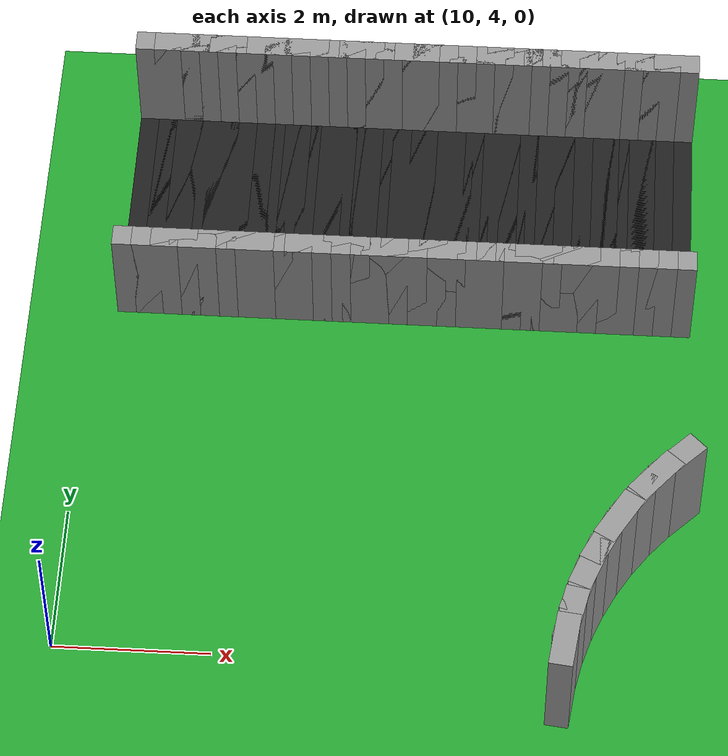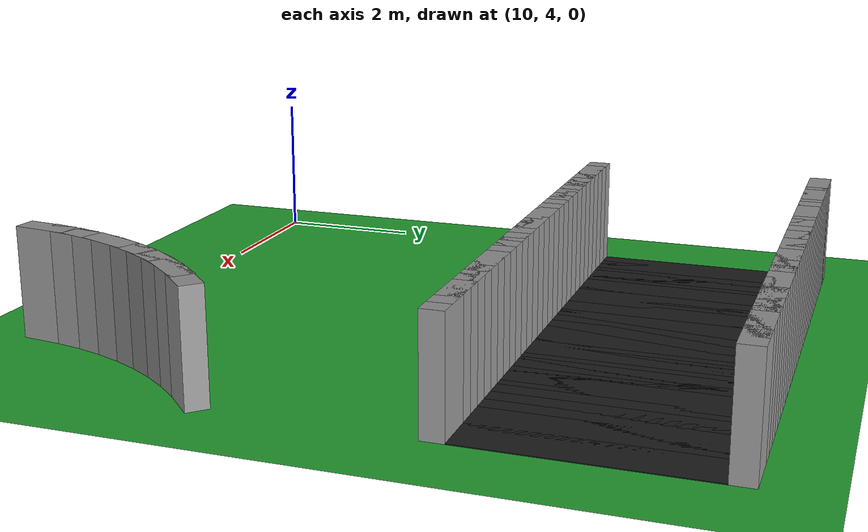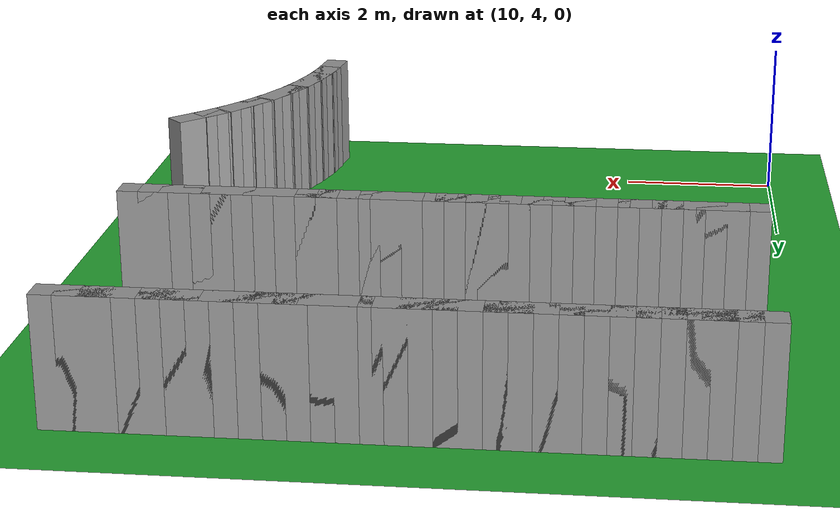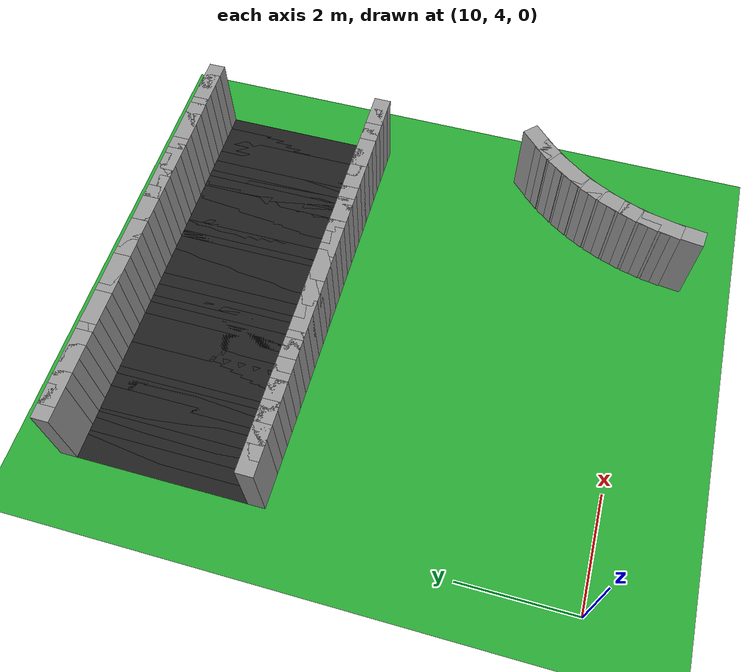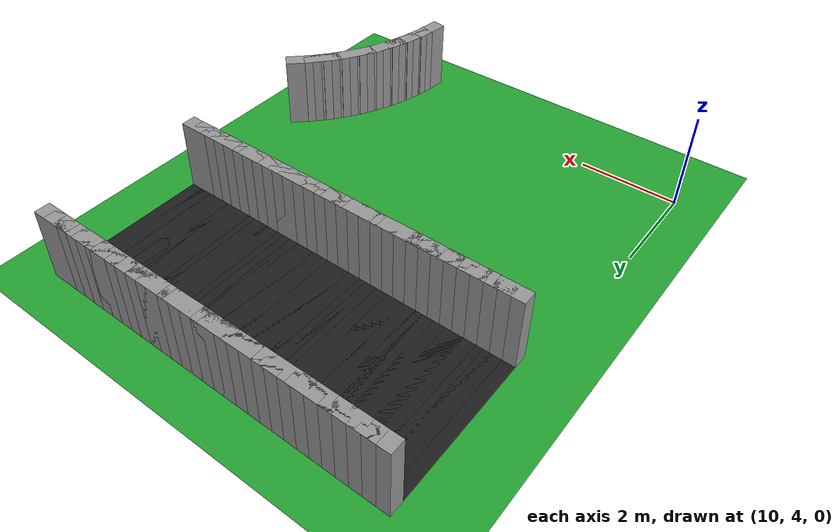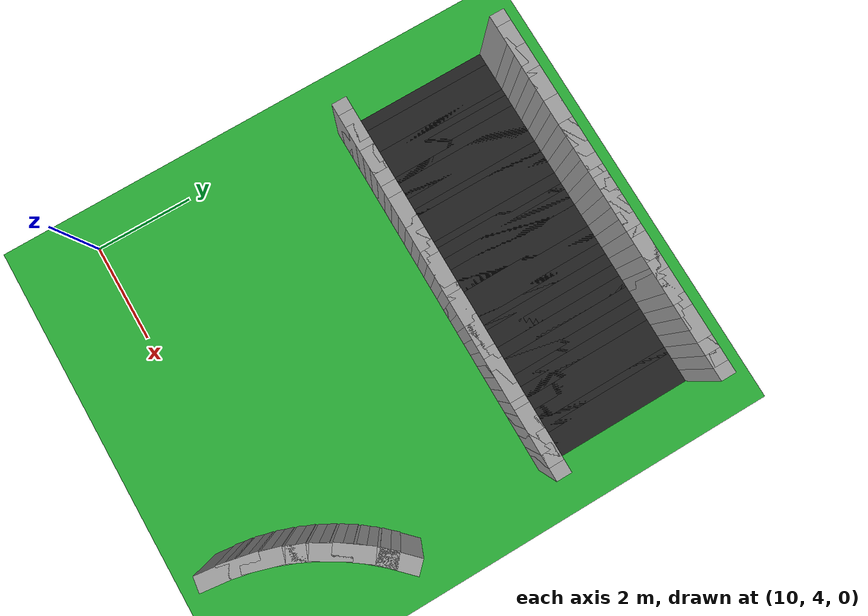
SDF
<sdf version="1.6">
 <world name="loop_extreme">
  <include><uri>model://sun</uri></include>
  <model name="ground_plane">
   <static>true</static>
   <link name="link">
    <collision name="collision">
     <surface><friction><ode><mu>100</mu><mu2>50</mu2></ode></friction></surface>
     <geometry><plane><normal>0 0 1</normal><size>120 120</size></plane></geometry>
    </collision>
    <visual name="visual">
     <geometry><plane><normal>0 0 1</normal><size>120 120</size></plane></geometry>
     <material>
      <script><uri>file://media/materials/scripts/gazebo.material</uri><name>Gazebo/Green</name></script>
     </material>
    </visual>
   </link>
  </model>
  <model name="curbL_80">
   <static>true</static>
   <pose>16.391 3.576 0.750 0 0 1.44679</pose>
   <link name="link">
    <collision name="collision"><geometry><box><size>0.744 0.300 1.500</size></box></geometry></collision>
    <visual name="visual">
     <geometry><box><size>0.744 0.300 1.500</size></box></geometry>
     <material>
      <script><uri>file://media/materials/scripts/gazebo.material</uri><name>Gazebo/Grey</name></script>
     </material>
    </visual>
   </link>
  </model>
  <model name="curbL_81">
   <static>true</static>
   <pose>16.454 3.954 0.750 0 0 1.36411</pose>
   <link name="link">
    <collision name="collision"><geometry><box><size>0.744 0.300 1.500</size></box></geometry></collision>
    <visual name="visual">
     <geometry><box><size>0.744 0.300 1.500</size></box></geometry>
     <material>
      <script><uri>file://media/materials/scripts/gazebo.material</uri><name>Gazebo/Grey</name></script>
     </material>
    </visual>
   </link>
  </model>
  <model name="curbL_82">
   <static>true</static>
   <pose>16.548 4.327 0.750 0 0 1.28144</pose>
   <link name="link">
    <collision name="collision"><geometry><box><size>0.744 0.300 1.500</size></box></geometry></collision>
    <visual name="visual">
     <geometry><box><size>0.744 0.300 1.500</size></box></geometry>
     <material>
      <script><uri>file://media/materials/scripts/gazebo.material</uri><name>Gazebo/Grey</name></script>
     </material>
    </visual>
   </link>
  </model>
  <model name="curbL_83">
   <static>true</static>
   <pose>16.673 4.690 0.750 0 0 1.19877</pose>
   <link name="link">
    <collision name="collision"><geometry><box><size>0.744 0.300 1.500</size></box></geometry></collision>
    <visual name="visual">
     <geometry><box><size>0.744 0.300 1.500</size></box></geometry>
     <material>
      <script><uri>file://media/materials/scripts/gazebo.material</uri><name>Gazebo/Grey</name></script>
     </material>
    </visual>
   </link>
  </model>
  <model name="curbL_84">
   <static>true</static>
   <pose>16.827 5.042 0.750 0 0 1.11609</pose>
   <link name="link">
    <collision name="collision"><geometry><box><size>0.744 0.300 1.500</size></box></geometry></collision>
    <visual name="visual">
     <geometry><box><size>0.744 0.300 1.500</size></box></geometry>
     <material>
      <script><uri>file://media/materials/scripts/gazebo.material</uri><name>Gazebo/Grey</name></script>
     </material>
    </visual>
   </link>
  </model>
  <model name="curbL_85">
   <static>true</static>
   <pose>17.010 5.380 0.750 0 0 1.03342</pose>
   <link name="link">
    <collision name="collision"><geometry><box><size>0.744 0.300 1.500</size></box></geometry></collision>
    <visual name="visual">
     <geometry><box><size>0.744 0.300 1.500</size></box></geometry>
     <material>
      <script><uri>file://media/materials/scripts/gazebo.material</uri><name>Gazebo/Grey</name></script>
     </material>
    </visual>
   </link>
  </model>
  <model name="curbL_86">
   <static>true</static>
   <pose>17.220 5.701 0.750 0 0 0.95075</pose>
   <link name="link">
    <collision name="collision"><geometry><box><size>0.744 0.300 1.500</size></box></geometry></collision>
    <visual name="visual">
     <geometry><box><size>0.744 0.300 1.500</size></box></geometry>
     <material>
      <script><uri>file://media/materials/scripts/gazebo.material</uri><name>Gazebo/Grey</name></script>
     </material>
    </visual>
   </link>
  </model>
  <model name="curbL_87">
   <static>true</static>
   <pose>17.456 6.004 0.750 0 0 0.86807</pose>
   <link name="link">
    <collision name="collision"><geometry><box><size>0.744 0.300 1.500</size></box></geometry></collision>
    <visual name="visual">
     <geometry><box><size>0.744 0.300 1.500</size></box></geometry>
     <material>
      <script><uri>file://media/materials/scripts/gazebo.material</uri><name>Gazebo/Grey</name></script>
     </material>
    </visual>
   </link>
  </model>
  <model name="curbL_88">
   <static>true</static>
   <pose>17.716 6.287 0.750 0 0 0.78540</pose>
   <link name="link">
    <collision name="collision"><geometry><box><size>0.744 0.300 1.500</size></box></geometry></collision>
    <visual name="visual">
     <geometry><box><size>0.744 0.300 1.500</size></box></geometry>
     <material>
      <script><uri>file://media/materials/scripts/gazebo.material</uri><name>Gazebo/Grey</name></script>
     </material>
    </visual>
   </link>
  </model>
  <model name="asphalt_174">
   <static>true</static>
   <pose>17.627 11.004 0.005 0 0 3.14159</pose>
   <link name="link">
    <visual name="visual">
     <geometry><box><size>0.610 3.000 0.010</size></box></geometry>
     <material>
      <script><uri>file://media/materials/scripts/gazebo.material</uri><name>Gazebo/Black</name></script>
     </material>
    </visual>
   </link>
  </model>
  <model name="curbL_174">
   <static>true</static>
   <pose>17.627 9.354 0.750 0 0 3.14159</pose>
   <link name="link">
    <collision name="collision"><geometry><box><size>0.610 0.300 1.500</size></box></geometry></collision>
    <visual name="visual">
     <geometry><box><size>0.610 0.300 1.500</size></box></geometry>
     <material>
      <script><uri>file://media/materials/scripts/gazebo.material</uri><name>Gazebo/Grey</name></script>
     </material>
    </visual>
   </link>
  </model>
  <model name="curbR_174">
   <static>true</static>
   <pose>17.627 12.654 0.750 0 0 3.14159</pose>
   <link name="link">
    <collision name="collision"><geometry><box><size>0.610 0.300 1.500</size></box></geometry></collision>
    <visual name="visual">
     <geometry><box><size>0.610 0.300 1.500</size></box></geometry>
     <material>
      <script><uri>file://media/materials/scripts/gazebo.material</uri><name>Gazebo/Grey</name></script>
     </material>
    </visual>
   </link>
  </model>
  <model name="asphalt_175">
   <static>true</static>
   <pose>17.377 11.004 0.005 0 0 3.14159</pose>
   <link name="link">
    <visual name="visual">
     <geometry><box><size>0.610 3.000 0.010</size></box></geometry>
     <material>
      <script><uri>file://media/materials/scripts/gazebo.material</uri><name>Gazebo/Black</name></script>
     </material>
    </visual>
   </link>
  </model>
  <model name="curbL_175">
   <static>true</static>
   <pose>17.377 9.354 0.750 0 0 3.14159</pose>
   <link name="link">
    <collision name="collision"><geometry><box><size>0.610 0.300 1.500</size></box></geometry></collision>
    <visual name="visual">
     <geometry><box><size>0.610 0.300 1.500</size></box></geometry>
     <material>
      <script><uri>file://media/materials/scripts/gazebo.material</uri><name>Gazebo/Grey</name></script>
     </material>
    </visual>
   </link>
  </model>
  <model name="curbR_175">
   <static>true</static>
   <pose>17.377 12.654 0.750 0 0 3.14159</pose>
   <link name="link">
    <collision name="collision"><geometry><box><size>0.610 0.300 1.500</size></box></geometry></collision>
    <visual name="visual">
     <geometry><box><size>0.610 0.300 1.500</size></box></geometry>
     <material>
      <script><uri>file://media/materials/scripts/gazebo.material</uri><name>Gazebo/Grey</name></script>
     </material>
    </visual>
   </link>
  </model>
  <model name="asphalt_176">
   <static>true</static>
   <pose>17.127 11.004 0.005 0 0 3.14159</pose>
   <link name="link">
    <visual name="visual">
     <geometry><box><size>0.610 3.000 0.010</size></box></geometry>
     <material>
      <script><uri>file://media/materials/scripts/gazebo.material</uri><name>Gazebo/Black</name></script>
     </material>
    </visual>
   </link>
  </model>
  <model name="curbL_176">
   <static>true</static>
   <pose>17.127 9.354 0.750 0 0 3.14159</pose>
   <link name="link">
    <collision name="collision"><geometry><box><size>0.610 0.300 1.500</size></box></geometry></collision>
    <visual name="visual">
     <geometry><box><size>0.610 0.300 1.500</size></box></geometry>
     <material>
      <script><uri>file://media/materials/scripts/gazebo.material</uri><name>Gazebo/Grey</name></script>
     </material>
    </visual>
   </link>
  </model>
  <model name="curbR_176">
   <static>true</static>
   <pose>17.127 12.654 0.750 0 0 3.14159</pose>
   <link name="link">
    <collision name="collision"><geometry><box><size>0.610 0.300 1.500</size></box></geometry></collision>
    <visual name="visual">
     <geometry><box><size>0.610 0.300 1.500</size></box></geometry>
     <material>
      <script><uri>file://media/materials/scripts/gazebo.material</uri><name>Gazebo/Grey</name></script>
     </material>
    </visual>
   </link>
  </model>
  <model name="asphalt_177">
   <static>true</static>
   <pose>16.877 11.004 0.005 0 0 3.14159</pose>
   <link name="link">
    <visual name="visual">
     <geometry><box><size>0.610 3.000 0.010</size></box></geometry>
     <material>
      <script><uri>file://media/materials/scripts/gazebo.material</uri><name>Gazebo/Black</name></script>
     </material>
    </visual>
   </link>
  </model>
  <model name="curbL_177">
   <static>true</static>
   <pose>16.877 9.354 0.750 0 0 3.14159</pose>
   <link name="link">
    <collision name="collision"><geometry><box><size>0.610 0.300 1.500</size></box></geometry></collision>
    <visual name="visual">
     <geometry><box><size>0.610 0.300 1.500</size></box></geometry>
     <material>
      <script><uri>file://media/materials/scripts/gazebo.material</uri><name>Gazebo/Grey</name></script>
     </material>
    </visual>
   </link>
  </model>
  <model name="curbR_177">
   <static>true</static>
   <pose>16.877 12.654 0.750 0 0 3.14159</pose>
   <link name="link">
    <collision name="collision"><geometry><box><size>0.610 0.300 1.500</size></box></geometry></collision>
    <visual name="visual">
     <geometry><box><size>0.610 0.300 1.500</size></box></geometry>
     <material>
      <script><uri>file://media/materials/scripts/gazebo.material</uri><name>Gazebo/Grey</name></script>
     </material>
    </visual>
   </link>
  </model>
  <model name="asphalt_178">
   <static>true</static>
   <pose>16.627 11.004 0.005 0 0 3.14159</pose>
   <link name="link">
    <visual name="visual">
     <geometry><box><size>0.610 3.000 0.010</size></box></geometry>
     <material>
      <script><uri>file://media/materials/scripts/gazebo.material</uri><name>Gazebo/Black</name></script>
     </material>
    </visual>
   </link>
  </model>
  <model name="curbL_178">
   <static>true</static>
   <pose>16.627 9.354 0.750 0 0 3.14159</pose>
   <link name="link">
    <collision name="collision"><geometry><box><size>0.610 0.300 1.500</size></box></geometry></collision>
    <visual name="visual">
     <geometry><box><size>0.610 0.300 1.500</size></box></geometry>
     <material>
      <script><uri>file://media/materials/scripts/gazebo.material</uri><name>Gazebo/Grey</name></script>
     </material>
    </visual>
   </link>
  </model>
  <model name="curbR_178">
   <static>true</static>
   <pose>16.627 12.654 0.750 0 0 3.14159</pose>
   <link name="link">
    <collision name="collision"><geometry><box><size>0.610 0.300 1.500</size></box></geometry></collision>
    <visual name="visual">
     <geometry><box><size>0.610 0.300 1.500</size></box></geometry>
     <material>
      <script><uri>file://media/materials/scripts/gazebo.material</uri><name>Gazebo/Grey</name></script>
     </material>
    </visual>
   </link>
  </model>
  <model name="asphalt_179">
   <static>true</static>
   <pose>16.377 11.004 0.005 0 0 3.14159</pose>
   <link name="link">
    <visual name="visual">
     <geometry><box><size>0.610 3.000 0.010</size></box></geometry>
     <material>
      <script><uri>file://media/materials/scripts/gazebo.material</uri><name>Gazebo/Black</name></script>
     </material>
    </visual>
   </link>
  </model>
  <model name="curbL_179">
   <static>true</static>
   <pose>16.377 9.354 0.750 0 0 3.14159</pose>
   <link name="link">
    <collision name="collision"><geometry><box><size>0.610 0.300 1.500</size></box></geometry></collision>
    <visual name="visual">
     <geometry><box><size>0.610 0.300 1.500</size></box></geometry>
     <material>
      <script><uri>file://media/materials/scripts/gazebo.material</uri><name>Gazebo/Grey</name></script>
     </material>
    </visual>
   </link>
  </model>
  <model name="curbR_179">
   <static>true</static>
   <pose>16.377 12.654 0.750 0 0 3.14159</pose>
   <link name="link">
    <collision name="collision"><geometry><box><size>0.610 0.300 1.500</size></box></geometry></collision>
    <visual name="visual">
     <geometry><box><size>0.610 0.300 1.500</size></box></geometry>
     <material>
      <script><uri>file://media/materials/scripts/gazebo.material</uri><name>Gazebo/Grey</name></script>
     </material>
    </visual>
   </link>
  </model>
  <model name="asphalt_180">
   <static>true</static>
   <pose>16.127 11.004 0.005 0 0 3.14159</pose>
   <link name="link">
    <visual name="visual">
     <geometry><box><size>0.610 3.000 0.010</size></box></geometry>
     <material>
      <script><uri>file://media/materials/scripts/gazebo.material</uri><name>Gazebo/Black</name></script>
     </material>
    </visual>
   </link>
  </model>
  <model name="curbL_180">
   <static>true</static>
   <pose>16.127 9.354 0.750 0 0 3.14159</pose>
   <link name="link">
    <collision name="collision"><geometry><box><size>0.610 0.300 1.500</size></box></geometry></collision>
    <visual name="visual">
     <geometry><box><size>0.610 0.300 1.500</size></box></geometry>
     <material>
      <script><uri>file://media/materials/scripts/gazebo.material</uri><name>Gazebo/Grey</name></script>
     </material>
    </visual>
   </link>
  </model>
  <model name="curbR_180">
   <static>true</static>
   <pose>16.127 12.654 0.750 0 0 3.14159</pose>
   <link name="link">
    <collision name="collision"><geometry><box><size>0.610 0.300 1.500</size></box></geometry></collision>
    <visual name="visual">
     <geometry><box><size>0.610 0.300 1.500</size></box></geometry>
     <material>
      <script><uri>file://media/materials/scripts/gazebo.material</uri><name>Gazebo/Grey</name></script>
     </material>
    </visual>
   </link>
  </model>
  <model name="asphalt_181">
   <static>true</static>
   <pose>15.877 11.004 0.005 0 0 3.14159</pose>
   <link name="link">
    <visual name="visual">
     <geometry><box><size>0.610 3.000 0.010</size></box></geometry>
     <material>
      <script><uri>file://media/materials/scripts/gazebo.material</uri><name>Gazebo/Black</name></script>
     </material>
    </visual>
   </link>
  </model>
  <model name="curbL_181">
   <static>true</static>
   <pose>15.877 9.354 0.750 0 0 3.14159</pose>
   <link name="link">
    <collision name="collision"><geometry><box><size>0.610 0.300 1.500</size></box></geometry></collision>
    <visual name="visual">
     <geometry><box><size>0.610 0.300 1.500</size></box></geometry>
     <material>
      <script><uri>file://media/materials/scripts/gazebo.material</uri><name>Gazebo/Grey</name></script>
     </material>
    </visual>
   </link>
  </model>
  <model name="curbR_181">
   <static>true</static>
   <pose>15.877 12.654 0.750 0 0 3.14159</pose>
   <link name="link">
    <collision name="collision"><geometry><box><size>0.610 0.300 1.500</size></box></geometry></collision>
    <visual name="visual">
     <geometry><box><size>0.610 0.300 1.500</size></box></geometry>
     <material>
      <script><uri>file://media/materials/scripts/gazebo.material</uri><name>Gazebo/Grey</name></script>
     </material>
    </visual>
   </link>
  </model>
  <model name="asphalt_182">
   <static>true</static>
   <pose>15.627 11.004 0.005 0 0 3.14159</pose>
   <link name="link">
    <visual name="visual">
     <geometry><box><size>0.610 3.000 0.010</size></box></geometry>
     <material>
      <script><uri>file://media/materials/scripts/gazebo.material</uri><name>Gazebo/Black</name></script>
     </material>
    </visual>
   </link>
  </model>
  <model name="curbL_182">
   <static>true</static>
   <pose>15.627 9.354 0.750 0 0 3.14159</pose>
   <link name="link">
    <collision name="collision"><geometry><box><size>0.610 0.300 1.500</size></box></geometry></collision>
    <visual name="visual">
     <geometry><box><size>0.610 0.300 1.500</size></box></geometry>
     <material>
      <script><uri>file://media/materials/scripts/gazebo.material</uri><name>Gazebo/Grey</name></script>
     </material>
    </visual>
   </link>
  </model>
  <model name="curbR_182">
   <static>true</static>
   <pose>15.627 12.654 0.750 0 0 3.14159</pose>
   <link name="link">
    <collision name="collision"><geometry><box><size>0.610 0.300 1.500</size></box></geometry></collision>
    <visual name="visual">
     <geometry><box><size>0.610 0.300 1.500</size></box></geometry>
     <material>
      <script><uri>file://media/materials/scripts/gazebo.material</uri><name>Gazebo/Grey</name></script>
     </material>
    </visual>
   </link>
  </model>
  <model name="asphalt_183">
   <static>true</static>
   <pose>15.377 11.004 0.005 0 0 3.14159</pose>
   <link name="link">
    <visual name="visual">
     <geometry><box><size>0.610 3.000 0.010</size></box></geometry>
     <material>
      <script><uri>file://media/materials/scripts/gazebo.material</uri><name>Gazebo/Black</name></script>
     </material>
    </visual>
   </link>
  </model>
  <model name="curbL_183">
   <static>true</static>
   <pose>15.377 9.354 0.750 0 0 3.14159</pose>
   <link name="link">
    <collision name="collision"><geometry><box><size>0.610 0.300 1.500</size></box></geometry></collision>
    <visual name="visual">
     <geometry><box><size>0.610 0.300 1.500</size></box></geometry>
     <material>
      <script><uri>file://media/materials/scripts/gazebo.material</uri><name>Gazebo/Grey</name></script>
     </material>
    </visual>
   </link>
  </model>
  <model name="curbR_183">
   <static>true</static>
   <pose>15.377 12.654 0.750 0 0 3.14159</pose>
   <link name="link">
    <collision name="collision"><geometry><box><size>0.610 0.300 1.500</size></box></geometry></collision>
    <visual name="visual">
     <geometry><box><size>0.610 0.300 1.500</size></box></geometry>
     <material>
      <script><uri>file://media/materials/scripts/gazebo.material</uri><name>Gazebo/Grey</name></script>
     </material>
    </visual>
   </link>
  </model>
  <model name="asphalt_184">
   <static>true</static>
   <pose>15.127 11.004 0.005 0 0 3.14159</pose>
   <link name="link">
    <visual name="visual">
     <geometry><box><size>0.610 3.000 0.010</size></box></geometry>
     <material>
      <script><uri>file://media/materials/scripts/gazebo.material</uri><name>Gazebo/Black</name></script>
     </material>
    </visual>
   </link>
  </model>
  <model name="curbL_184">
   <static>true</static>
   <pose>15.127 9.354 0.750 0 0 3.14159</pose>
   <link name="link">
    <collision name="collision"><geometry><box><size>0.610 0.300 1.500</size></box></geometry></collision>
    <visual name="visual">
     <geometry><box><size>0.610 0.300 1.500</size></box></geometry>
     <material>
      <script><uri>file://media/materials/scripts/gazebo.material</uri><name>Gazebo/Grey</name></script>
     </material>
    </visual>
   </link>
  </model>
  <model name="curbR_184">
   <static>true</static>
   <pose>15.127 12.654 0.750 0 0 3.14159</pose>
   <link name="link">
    <collision name="collision"><geometry><box><size>0.610 0.300 1.500</size></box></geometry></collision>
    <visual name="visual">
     <geometry><box><size>0.610 0.300 1.500</size></box></geometry>
     <material>
      <script><uri>file://media/materials/scripts/gazebo.material</uri><name>Gazebo/Grey</name></script>
     </material>
    </visual>
   </link>
  </model>
  <model name="asphalt_185">
   <static>true</static>
   <pose>14.877 11.004 0.005 0 0 3.14159</pose>
   <link name="link">
    <visual name="visual">
     <geometry><box><size>0.610 3.000 0.010</size></box></geometry>
     <material>
      <script><uri>file://media/materials/scripts/gazebo.material</uri><name>Gazebo/Black</name></script>
     </material>
    </visual>
   </link>
  </model>
  <model name="curbL_185">
   <static>true</static>
   <pose>14.877 9.354 0.750 0 0 3.14159</pose>
   <link name="link">
    <collision name="collision"><geometry><box><size>0.610 0.300 1.500</size></box></geometry></collision>
    <visual name="visual">
     <geometry><box><size>0.610 0.300 1.500</size></box></geometry>
     <material>
      <script><uri>file://media/materials/scripts/gazebo.material</uri><name>Gazebo/Grey</name></script>
     </material>
    </visual>
   </link>
  </model>
  <model name="curbR_185">
   <static>true</static>
   <pose>14.877 12.654 0.750 0 0 3.14159</pose>
   <link name="link">
    <collision name="collision"><geometry><box><size>0.610 0.300 1.500</size></box></geometry></collision>
    <visual name="visual">
     <geometry><box><size>0.610 0.300 1.500</size></box></geometry>
     <material>
      <script><uri>file://media/materials/scripts/gazebo.material</uri><name>Gazebo/Grey</name></script>
     </material>
    </visual>
   </link>
  </model>
  <model name="asphalt_186">
   <static>true</static>
   <pose>14.627 11.004 0.005 0 0 3.14159</pose>
   <link name="link">
    <visual name="visual">
     <geometry><box><size>0.610 3.000 0.010</size></box></geometry>
     <material>
      <script><uri>file://media/materials/scripts/gazebo.material</uri><name>Gazebo/Black</name></script>
     </material>
    </visual>
   </link>
  </model>
  <model name="curbL_186">
   <static>true</static>
   <pose>14.627 9.354 0.750 0 0 3.14159</pose>
   <link name="link">
    <collision name="collision"><geometry><box><size>0.610 0.300 1.500</size></box></geometry></collision>
    <visual name="visual">
     <geometry><box><size>0.610 0.300 1.500</size></box></geometry>
     <material>
      <script><uri>file://media/materials/scripts/gazebo.material</uri><name>Gazebo/Grey</name></script>
     </material>
    </visual>
   </link>
  </model>
  <model name="curbR_186">
   <static>true</static>
   <pose>14.627 12.654 0.750 0 0 3.14159</pose>
   <link name="link">
    <collision name="collision"><geometry><box><size>0.610 0.300 1.500</size></box></geometry></collision>
    <visual name="visual">
     <geometry><box><size>0.610 0.300 1.500</size></box></geometry>
     <material>
      <script><uri>file://media/materials/scripts/gazebo.material</uri><name>Gazebo/Grey</name></script>
     </material>
    </visual>
   </link>
  </model>
  <model name="asphalt_187">
   <static>true</static>
   <pose>14.377 11.004 0.005 0 0 3.14159</pose>
   <link name="link">
    <visual name="visual">
     <geometry><box><size>0.610 3.000 0.010</size></box></geometry>
     <material>
      <script><uri>file://media/materials/scripts/gazebo.material</uri><name>Gazebo/Black</name></script>
     </material>
    </visual>
   </link>
  </model>
  <model name="curbL_187">
   <static>true</static>
   <pose>14.377 9.354 0.750 0 0 3.14159</pose>
   <link name="link">
    <collision name="collision"><geometry><box><size>0.610 0.300 1.500</size></box></geometry></collision>
    <visual name="visual">
     <geometry><box><size>0.610 0.300 1.500</size></box></geometry>
     <material>
      <script><uri>file://media/materials/scripts/gazebo.material</uri><name>Gazebo/Grey</name></script>
     </material>
    </visual>
   </link>
  </model>
  <model name="curbR_187">
   <static>true</static>
   <pose>14.377 12.654 0.750 0 0 3.14159</pose>
   <link name="link">
    <collision name="collision"><geometry><box><size>0.610 0.300 1.500</size></box></geometry></collision>
    <visual name="visual">
     <geometry><box><size>0.610 0.300 1.500</size></box></geometry>
     <material>
      <script><uri>file://media/materials/scripts/gazebo.material</uri><name>Gazebo/Grey</name></script>
     </material>
    </visual>
   </link>
  </model>
  <model name="asphalt_188">
   <static>true</static>
   <pose>14.127 11.004 0.005 0 0 3.14159</pose>
   <link name="link">
    <visual name="visual">
     <geometry><box><size>0.610 3.000 0.010</size></box></geometry>
     <material>
      <script><uri>file://media/materials/scripts/gazebo.material</uri><name>Gazebo/Black</name></script>
     </material>
    </visual>
   </link>
  </model>
  <model name="curbL_188">
   <static>true</static>
   <pose>14.127 9.354 0.750 0 0 3.14159</pose>
   <link name="link">
    <collision name="collision"><geometry><box><size>0.610 0.300 1.500</size></box></geometry></collision>
    <visual name="visual">
     <geometry><box><size>0.610 0.300 1.500</size></box></geometry>
     <material>
      <script><uri>file://media/materials/scripts/gazebo.material</uri><name>Gazebo/Grey</name></script>
     </material>
    </visual>
   </link>
  </model>
  <model name="curbR_188">
   <static>true</static>
   <pose>14.127 12.654 0.750 0 0 3.14159</pose>
   <link name="link">
    <collision name="collision"><geometry><box><size>0.610 0.300 1.500</size></box></geometry></collision>
    <visual name="visual">
     <geometry><box><size>0.610 0.300 1.500</size></box></geometry>
     <material>
      <script><uri>file://media/materials/scripts/gazebo.material</uri><name>Gazebo/Grey</name></script>
     </material>
    </visual>
   </link>
  </model>
  <model name="asphalt_189">
   <static>true</static>
   <pose>13.877 11.004 0.005 0 0 3.14159</pose>
   <link name="link">
    <visual name="visual">
     <geometry><box><size>0.610 3.000 0.010</size></box></geometry>
     <material>
      <script><uri>file://media/materials/scripts/gazebo.material</uri><name>Gazebo/Black</name></script>
     </material>
    </visual>
   </link>
  </model>
  <model name="curbL_189">
   <static>true</static>
   <pose>13.877 9.354 0.750 0 0 3.14159</pose>
   <link name="link">
    <collision name="collision"><geometry><box><size>0.610 0.300 1.500</size></box></geometry></collision>
    <visual name="visual">
     <geometry><box><size>0.610 0.300 1.500</size></box></geometry>
     <material>
      <script><uri>file://media/materials/scripts/gazebo.material</uri><name>Gazebo/Grey</name></script>
     </material>
    </visual>
   </link>
  </model>
  <model name="curbR_189">
   <static>true</static>
   <pose>13.877 12.654 0.750 0 0 3.14159</pose>
   <link name="link">
    <collision name="collision"><geometry><box><size>0.610 0.300 1.500</size></box></geometry></collision>
    <visual name="visual">
     <geometry><box><size>0.610 0.300 1.500</size></box></geometry>
     <material>
      <script><uri>file://media/materials/scripts/gazebo.material</uri><name>Gazebo/Grey</name></script>
     </material>
    </visual>
   </link>
  </model>
  <model name="asphalt_190">
   <static>true</static>
   <pose>13.627 11.004 0.005 0 0 3.14159</pose>
   <link name="link">
    <visual name="visual">
     <geometry><box><size>0.610 3.000 0.010</size></box></geometry>
     <material>
      <script><uri>file://media/materials/scripts/gazebo.material</uri><name>Gazebo/Black</name></script>
     </material>
    </visual>
   </link>
  </model>
  <model name="curbL_190">
   <static>true</static>
   <pose>13.627 9.354 0.750 0 0 3.14159</pose>
   <link name="link">
    <collision name="collision"><geometry><box><size>0.610 0.300 1.500</size></box></geometry></collision>
    <visual name="visual">
     <geometry><box><size>0.610 0.300 1.500</size></box></geometry>
     <material>
      <script><uri>file://media/materials/scripts/gazebo.material</uri><name>Gazebo/Grey</name></script>
     </material>
    </visual>
   </link>
  </model>
  <model name="curbR_190">
   <static>true</static>
   <pose>13.627 12.654 0.750 0 0 3.14159</pose>
   <link name="link">
    <collision name="collision"><geometry><box><size>0.610 0.300 1.500</size></box></geometry></collision>
    <visual name="visual">
     <geometry><box><size>0.610 0.300 1.500</size></box></geometry>
     <material>
      <script><uri>file://media/materials/scripts/gazebo.material</uri><name>Gazebo/Grey</name></script>
     </material>
    </visual>
   </link>
  </model>
  <model name="asphalt_191">
   <static>true</static>
   <pose>13.377 11.004 0.005 0 0 3.14159</pose>
   <link name="link">
    <visual name="visual">
     <geometry><box><size>0.610 3.000 0.010</size></box></geometry>
     <material>
      <script><uri>file://media/materials/scripts/gazebo.material</uri><name>Gazebo/Black</name></script>
     </material>
    </visual>
   </link>
  </model>
  <model name="curbL_191">
   <static>true</static>
   <pose>13.377 9.354 0.750 0 0 3.14159</pose>
   <link name="link">
    <collision name="collision"><geometry><box><size>0.610 0.300 1.500</size></box></geometry></collision>
    <visual name="visual">
     <geometry><box><size>0.610 0.300 1.500</size></box></geometry>
     <material>
      <script><uri>file://media/materials/scripts/gazebo.material</uri><name>Gazebo/Grey</name></script>
     </material>
    </visual>
   </link>
  </model>
  <model name="curbR_191">
   <static>true</static>
   <pose>13.377 12.654 0.750 0 0 3.14159</pose>
   <link name="link">
    <collision name="collision"><geometry><box><size>0.610 0.300 1.500</size></box></geometry></collision>
    <visual name="visual">
     <geometry><box><size>0.610 0.300 1.500</size></box></geometry>
     <material>
      <script><uri>file://media/materials/scripts/gazebo.material</uri><name>Gazebo/Grey</name></script>
     </material>
    </visual>
   </link>
  </model>
  <model name="asphalt_192">
   <static>true</static>
   <pose>13.127 11.004 0.005 0 0 3.14159</pose>
   <link name="link">
    <visual name="visual">
     <geometry><box><size>0.610 3.000 0.010</size></box></geometry>
     <material>
      <script><uri>file://media/materials/scripts/gazebo.material</uri><name>Gazebo/Black</name></script>
     </material>
    </visual>
   </link>
  </model>
  <model name="curbL_192">
   <static>true</static>
   <pose>13.127 9.354 0.750 0 0 3.14159</pose>
   <link name="link">
    <collision name="collision"><geometry><box><size>0.610 0.300 1.500</size></box></geometry></collision>
    <visual name="visual">
     <geometry><box><size>0.610 0.300 1.500</size></box></geometry>
     <material>
      <script><uri>file://media/materials/scripts/gazebo.material</uri><name>Gazebo/Grey</name></script>
     </material>
    </visual>
   </link>
  </model>
  <model name="curbR_192">
   <static>true</static>
   <pose>13.127 12.654 0.750 0 0 3.14159</pose>
   <link name="link">
    <collision name="collision"><geometry><box><size>0.610 0.300 1.500</size></box></geometry></collision>
    <visual name="visual">
     <geometry><box><size>0.610 0.300 1.500</size></box></geometry>
     <material>
      <script><uri>file://media/materials/scripts/gazebo.material</uri><name>Gazebo/Grey</name></script>
     </material>
    </visual>
   </link>
  </model>
  <model name="asphalt_193">
   <static>true</static>
   <pose>12.877 11.004 0.005 0 0 3.14159</pose>
   <link name="link">
    <visual name="visual">
     <geometry><box><size>0.610 3.000 0.010</size></box></geometry>
     <material>
      <script><uri>file://media/materials/scripts/gazebo.material</uri><name>Gazebo/Black</name></script>
     </material>
    </visual>
   </link>
  </model>
  <model name="curbL_193">
   <static>true</static>
   <pose>12.877 9.354 0.750 0 0 3.14159</pose>
   <link name="link">
    <collision name="collision"><geometry><box><size>0.610 0.300 1.500</size></box></geometry></collision>
    <visual name="visual">
     <geometry><box><size>0.610 0.300 1.500</size></box></geometry>
     <material>
      <script><uri>file://media/materials/scripts/gazebo.material</uri><name>Gazebo/Grey</name></script>
     </material>
    </visual>
   </link>
  </model>
  <model name="curbR_193">
   <static>true</static>
   <pose>12.877 12.654 0.750 0 0 3.14159</pose>
   <link name="link">
    <collision name="collision"><geometry><box><size>0.610 0.300 1.500</size></box></geometry></collision>
    <visual name="visual">
     <geometry><box><size>0.610 0.300 1.500</size></box></geometry>
     <material>
      <script><uri>file://media/materials/scripts/gazebo.material</uri><name>Gazebo/Grey</name></script>
     </material>
    </visual>
   </link>
  </model>
  <model name="asphalt_194">
   <static>true</static>
   <pose>12.627 11.004 0.005 0 0 3.14159</pose>
   <link name="link">
    <visual name="visual">
     <geometry><box><size>0.610 3.000 0.010</size></box></geometry>
     <material>
      <script><uri>file://media/materials/scripts/gazebo.material</uri><name>Gazebo/Black</name></script>
     </material>
    </visual>
   </link>
  </model>
  <model name="curbL_194">
   <static>true</static>
   <pose>12.627 9.354 0.750 0 0 3.14159</pose>
   <link name="link">
    <collision name="collision"><geometry><box><size>0.610 0.300 1.500</size></box></geometry></collision>
    <visual name="visual">
     <geometry><box><size>0.610 0.300 1.500</size></box></geometry>
     <material>
      <script><uri>file://media/materials/scripts/gazebo.material</uri><name>Gazebo/Grey</name></script>
     </material>
    </visual>
   </link>
  </model>
  <model name="curbR_194">
   <static>true</static>
   <pose>12.627 12.654 0.750 0 0 3.14159</pose>
   <link name="link">
    <collision name="collision"><geometry><box><size>0.610 0.300 1.500</size></box></geometry></collision>
    <visual name="visual">
     <geometry><box><size>0.610 0.300 1.500</size></box></geometry>
     <material>
      <script><uri>file://media/materials/scripts/gazebo.material</uri><name>Gazebo/Grey</name></script>
     </material>
    </visual>
   </link>
  </model>
  <model name="asphalt_195">
   <static>true</static>
   <pose>12.377 11.004 0.005 0 0 3.14159</pose>
   <link name="link">
    <visual name="visual">
     <geometry><box><size>0.610 3.000 0.010</size></box></geometry>
     <material>
      <script><uri>file://media/materials/scripts/gazebo.material</uri><name>Gazebo/Black</name></script>
     </material>
    </visual>
   </link>
  </model>
  <model name="curbL_195">
   <static>true</static>
   <pose>12.377 9.354 0.750 0 0 3.14159</pose>
   <link name="link">
    <collision name="collision"><geometry><box><size>0.610 0.300 1.500</size></box></geometry></collision>
    <visual name="visual">
     <geometry><box><size>0.610 0.300 1.500</size></box></geometry>
     <material>
      <script><uri>file://media/materials/scripts/gazebo.material</uri><name>Gazebo/Grey</name></script>
     </material>
    </visual>
   </link>
  </model>
  <model name="curbR_195">
   <static>true</static>
   <pose>12.377 12.654 0.750 0 0 3.14159</pose>
   <link name="link">
    <collision name="collision"><geometry><box><size>0.610 0.300 1.500</size></box></geometry></collision>
    <visual name="visual">
     <geometry><box><size>0.610 0.300 1.500</size></box></geometry>
     <material>
      <script><uri>file://media/materials/scripts/gazebo.material</uri><name>Gazebo/Grey</name></script>
     </material>
    </visual>
   </link>
  </model>
  <model name="asphalt_196">
   <static>true</static>
   <pose>12.127 11.004 0.005 0 0 3.14159</pose>
   <link name="link">
    <visual name="visual">
     <geometry><box><size>0.610 3.000 0.010</size></box></geometry>
     <material>
      <script><uri>file://media/materials/scripts/gazebo.material</uri><name>Gazebo/Black</name></script>
     </material>
    </visual>
   </link>
  </model>
  <model name="curbL_196">
   <static>true</static>
   <pose>12.127 9.354 0.750 0 0 3.14159</pose>
   <link name="link">
    <collision name="collision"><geometry><box><size>0.610 0.300 1.500</size></box></geometry></collision>
    <visual name="visual">
     <geometry><box><size>0.610 0.300 1.500</size></box></geometry>
     <material>
      <script><uri>file://media/materials/scripts/gazebo.material</uri><name>Gazebo/Grey</name></script>
     </material>
    </visual>
   </link>
  </model>
  <model name="curbR_196">
   <static>true</static>
   <pose>12.127 12.654 0.750 0 0 3.14159</pose>
   <link name="link">
    <collision name="collision"><geometry><box><size>0.610 0.300 1.500</size></box></geometry></collision>
    <visual name="visual">
     <geometry><box><size>0.610 0.300 1.500</size></box></geometry>
     <material>
      <script><uri>file://media/materials/scripts/gazebo.material</uri><name>Gazebo/Grey</name></script>
     </material>
    </visual>
   </link>
  </model>
  <model name="asphalt_197">
   <static>true</static>
   <pose>11.877 11.004 0.005 0 0 3.14159</pose>
   <link name="link">
    <visual name="visual">
     <geometry><box><size>0.610 3.000 0.010</size></box></geometry>
     <material>
      <script><uri>file://media/materials/scripts/gazebo.material</uri><name>Gazebo/Black</name></script>
     </material>
    </visual>
   </link>
  </model>
  <model name="curbL_197">
   <static>true</static>
   <pose>11.877 9.354 0.750 0 0 3.14159</pose>
   <link name="link">
    <collision name="collision"><geometry><box><size>0.610 0.300 1.500</size></box></geometry></collision>
    <visual name="visual">
     <geometry><box><size>0.610 0.300 1.500</size></box></geometry>
     <material>
      <script><uri>file://media/materials/scripts/gazebo.material</uri><name>Gazebo/Grey</name></script>
     </material>
    </visual>
   </link>
  </model>
  <model name="curbR_197">
   <static>true</static>
   <pose>11.877 12.654 0.750 0 0 3.14159</pose>
   <link name="link">
    <collision name="collision"><geometry><box><size>0.610 0.300 1.500</size></box></geometry></collision>
    <visual name="visual">
     <geometry><box><size>0.610 0.300 1.500</size></box></geometry>
     <material>
      <script><uri>file://media/materials/scripts/gazebo.material</uri><name>Gazebo/Grey</name></script>
     </material>
    </visual>
   </link>
  </model>
  <model name="asphalt_198">
   <static>true</static>
   <pose>11.627 11.004 0.005 0 0 3.14159</pose>
   <link name="link">
    <visual name="visual">
     <geometry><box><size>0.610 3.000 0.010</size></box></geometry>
     <material>
      <script><uri>file://media/materials/scripts/gazebo.material</uri><name>Gazebo/Black</name></script>
     </material>
    </visual>
   </link>
  </model>
  <model name="curbL_198">
   <static>true</static>
   <pose>11.627 9.354 0.750 0 0 3.14159</pose>
   <link name="link">
    <collision name="collision"><geometry><box><size>0.610 0.300 1.500</size></box></geometry></collision>
    <visual name="visual">
     <geometry><box><size>0.610 0.300 1.500</size></box></geometry>
     <material>
      <script><uri>file://media/materials/scripts/gazebo.material</uri><name>Gazebo/Grey</name></script>
     </material>
    </visual>
   </link>
  </model>
  <model name="curbR_198">
   <static>true</static>
   <pose>11.627 12.654 0.750 0 0 3.14159</pose>
   <link name="link">
    <collision name="collision"><geometry><box><size>0.610 0.300 1.500</size></box></geometry></collision>
    <visual name="visual">
     <geometry><box><size>0.610 0.300 1.500</size></box></geometry>
     <material>
      <script><uri>file://media/materials/scripts/gazebo.material</uri><name>Gazebo/Grey</name></script>
     </material>
    </visual>
   </link>
  </model>
  <model name="asphalt_199">
   <static>true</static>
   <pose>11.377 11.004 0.005 0 0 3.14159</pose>
   <link name="link">
    <visual name="visual">
     <geometry><box><size>0.610 3.000 0.010</size></box></geometry>
     <material>
      <script><uri>file://media/materials/scripts/gazebo.material</uri><name>Gazebo/Black</name></script>
     </material>
    </visual>
   </link>
  </model>
  <model name="curbL_199">
   <static>true</static>
   <pose>11.377 9.354 0.750 0 0 3.14159</pose>
   <link name="link">
    <collision name="collision"><geometry><box><size>0.610 0.300 1.500</size></box></geometry></collision>
    <visual name="visual">
     <geometry><box><size>0.610 0.300 1.500</size></box></geometry>
     <material>
      <script><uri>file://media/materials/scripts/gazebo.material</uri><name>Gazebo/Grey</name></script>
     </material>
    </visual>
   </link>
  </model>
  <model name="curbR_199">
   <static>true</static>
   <pose>11.377 12.654 0.750 0 0 3.14159</pose>
   <link name="link">
    <collision name="collision"><geometry><box><size>0.610 0.300 1.500</size></box></geometry></collision>
    <visual name="visual">
     <geometry><box><size>0.610 0.300 1.500</size></box></geometry>
     <material>
      <script><uri>file://media/materials/scripts/gazebo.material</uri><name>Gazebo/Grey</name></script>
     </material>
    </visual>
   </link>
  </model>
  <model name="asphalt_200">
   <static>true</static>
   <pose>11.127 11.004 0.005 0 0 3.14159</pose>
   <link name="link">
    <visual name="visual">
     <geometry><box><size>0.610 3.000 0.010</size></box></geometry>
     <material>
      <script><uri>file://media/materials/scripts/gazebo.material</uri><name>Gazebo/Black</name></script>
     </material>
    </visual>
   </link>
  </model>
  <model name="curbL_200">
   <static>true</static>
   <pose>11.127 9.354 0.750 0 0 3.14159</pose>
   <link name="link">
    <collision name="collision"><geometry><box><size>0.610 0.300 1.500</size></box></geometry></collision>
    <visual name="visual">
     <geometry><box><size>0.610 0.300 1.500</size></box></geometry>
     <material>
      <script><uri>file://media/materials/scripts/gazebo.material</uri><name>Gazebo/Grey</name></script>
     </material>
    </visual>
   </link>
  </model>
  <model name="curbR_200">
   <static>true</static>
   <pose>11.127 12.654 0.750 0 0 3.14159</pose>
   <link name="link">
    <collision name="collision"><geometry><box><size>0.610 0.300 1.500</size></box></geometry></collision>
    <visual name="visual">
     <geometry><box><size>0.610 0.300 1.500</size></box></geometry>
     <material>
      <script><uri>file://media/materials/scripts/gazebo.material</uri><name>Gazebo/Grey</name></script>
     </material>
    </visual>
   </link>
  </model>
  <model name="asphalt_201">
   <static>true</static>
   <pose>10.877 11.004 0.005 0 0 3.14159</pose>
   <link name="link">
    <visual name="visual">
     <geometry><box><size>0.610 3.000 0.010</size></box></geometry>
     <material>
      <script><uri>file://media/materials/scripts/gazebo.material</uri><name>Gazebo/Black</name></script>
     </material>
    </visual>
   </link>
  </model>
  <model name="curbL_201">
   <static>true</static>
   <pose>10.877 9.354 0.750 0 0 3.14159</pose>
   <link name="link">
    <collision name="collision"><geometry><box><size>0.610 0.300 1.500</size></box></geometry></collision>
    <visual name="visual">
     <geometry><box><size>0.610 0.300 1.500</size></box></geometry>
     <material>
      <script><uri>file://media/materials/scripts/gazebo.material</uri><name>Gazebo/Grey</name></script>
     </material>
    </visual>
   </link>
  </model>
  <model name="curbR_201">
   <static>true</static>
   <pose>10.877 12.654 0.750 0 0 3.14159</pose>
   <link name="link">
    <collision name="collision"><geometry><box><size>0.610 0.300 1.500</size></box></geometry></collision>
    <visual name="visual">
     <geometry><box><size>0.610 0.300 1.500</size></box></geometry>
     <material>
      <script><uri>file://media/materials/scripts/gazebo.material</uri><name>Gazebo/Grey</name></script>
     </material>
    </visual>
   </link>
  </model>
  <model name="asphalt_202">
   <static>true</static>
   <pose>10.627 11.004 0.005 0 0 3.14159</pose>
   <link name="link">
    <visual name="visual">
     <geometry><box><size>0.610 3.000 0.010</size></box></geometry>
     <material>
      <script><uri>file://media/materials/scripts/gazebo.material</uri><name>Gazebo/Black</name></script>
     </material>
    </visual>
   </link>
  </model>
  <model name="curbL_202">
   <static>true</static>
   <pose>10.627 9.354 0.750 0 0 3.14159</pose>
   <link name="link">
    <collision name="collision"><geometry><box><size>0.610 0.300 1.500</size></box></geometry></collision>
    <visual name="visual">
     <geometry><box><size>0.610 0.300 1.500</size></box></geometry>
     <material>
      <script><uri>file://media/materials/scripts/gazebo.material</uri><name>Gazebo/Grey</name></script>
     </material>
    </visual>
   </link>
  </model>
  <model name="curbR_202">
   <static>true</static>
   <pose>10.627 12.654 0.750 0 0 3.14159</pose>
   <link name="link">
    <collision name="collision"><geometry><box><size>0.610 0.300 1.500</size></box></geometry></collision>
    <visual name="visual">
     <geometry><box><size>0.610 0.300 1.500</size></box></geometry>
     <material>
      <script><uri>file://media/materials/scripts/gazebo.material</uri><name>Gazebo/Grey</name></script>
     </material>
    </visual>
   </link>
  </model>
 </world>
</sdf>
